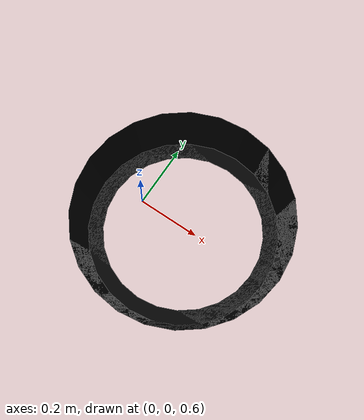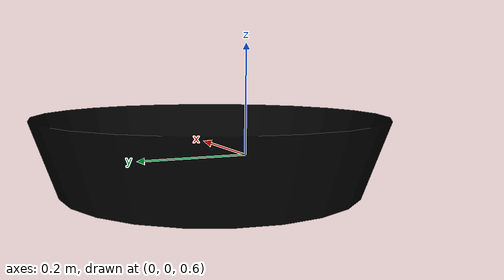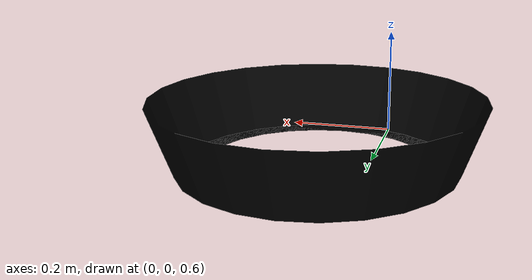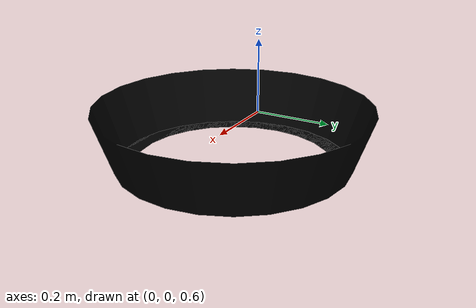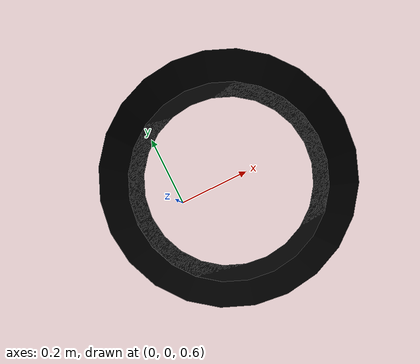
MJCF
<mujoco model="original-12">
  <default>
    <default class="visual">
      <geom group="2" type="mesh" contype="0" conaffinity="0"/>
    </default>
    <default class="collision">
      <geom group="3" type="mesh"/>
    </default>
  </default>
  <asset>
    <material name="material_0_0" specular="0.06666666666666667" shininess="0.03" rgba="0.13333333333333333 0.13333333333333333 0.13333333333333333 1"/>
    <material name="material_1_0" specular="0.06666666666666667" shininess="0.03" rgba="0 0 0 1"/>
    <mesh file="original-12_0.obj"/>
    <mesh file="original-12_1.obj"/>
  </asset>
  <worldbody>
    <body name="original-12">
      <geom mesh="original-12_0" material="material_1_0" class="visual"/>
      <geom mesh="original-12_1" material="material_0_0" class="visual"/>
      <geom mesh="original-12_0" class="collision"/>
      <geom mesh="original-12_1" class="collision"/>
    </body>
  </worldbody>
</mujoco>
